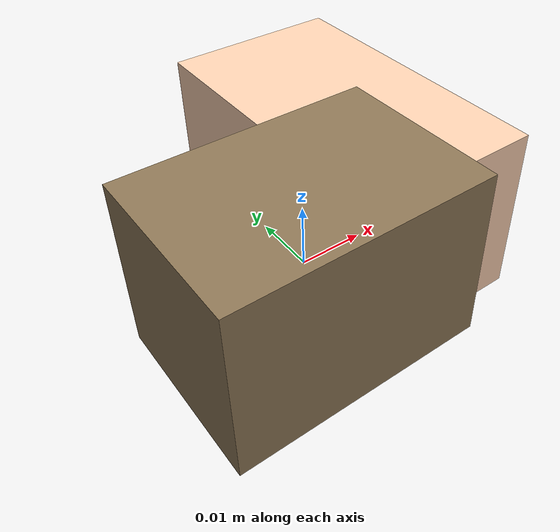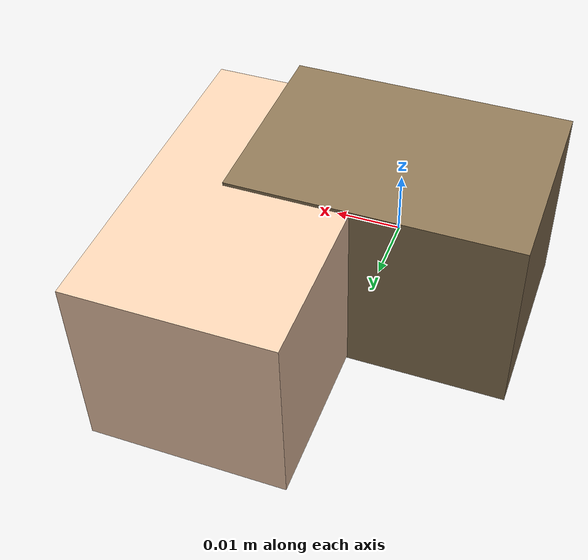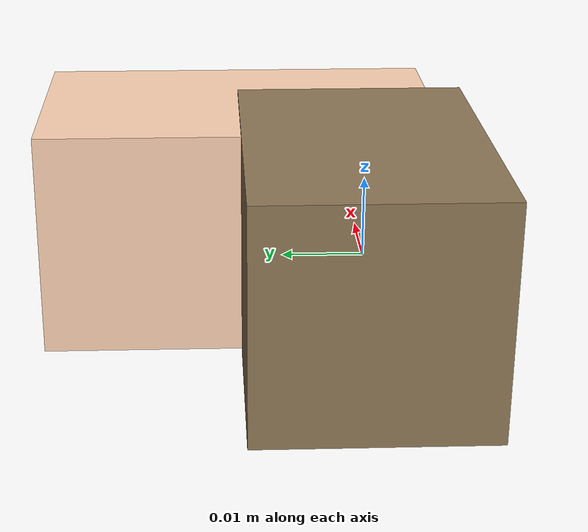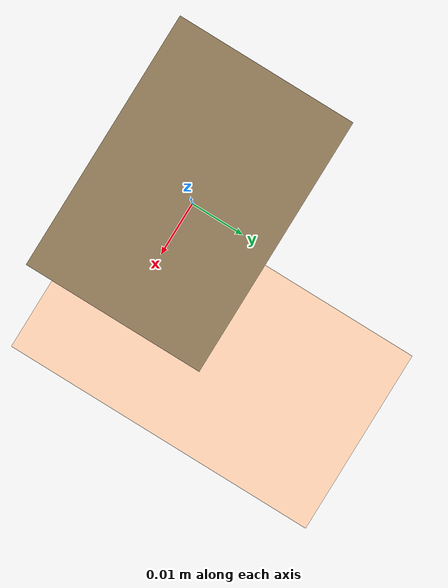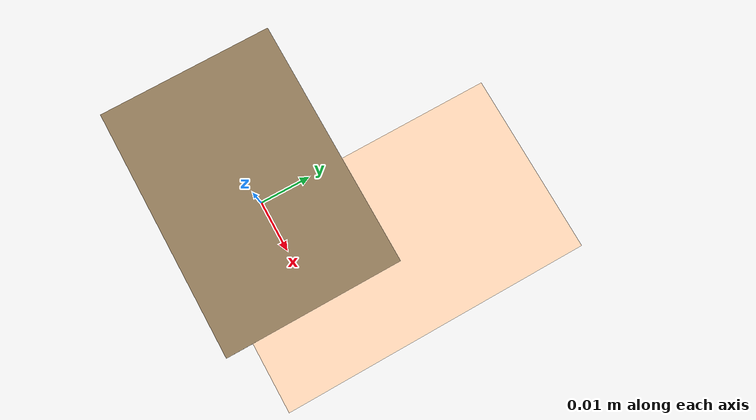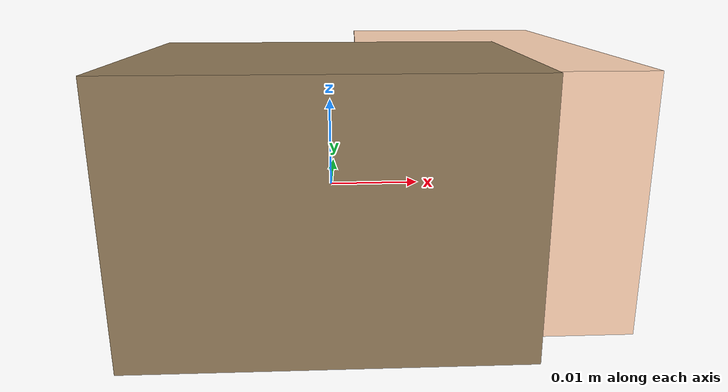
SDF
<sdf version="1.4"><world name="default"><model name="object0"><link name="link1"><pose>0 0 0 0 0 0</pose><inertial><pose>0 0 0 0 0 0</pose><mass>0.02328486667126569</mass><inertia><ixx>3.4927300006898533e-06</ixx><ixy>0</ixy><iyy>5.354248461238111e-06</iyy><ixz>0</ixz><iyz>0</iyz><izz>5.354248461238111e-06</izz></inertia></inertial><visual name="link1_visual"><pose>0 0  0 0 0 0</pose><geometry><box><size>0.04312012346530684 0.03 0.03</size></box></geometry><material><diffuse>0.5544739969311119 0.46674200876942323 0.33603417769605975 1</diffuse></material></visual><collision><pose>0 0  0 0 0 0</pose><geometry><box><size>0.04312012346530684 0.03 0.03</size></box></geometry></collision></link><link name="link2"><pose>0.018065426230015832 0.015011540294029966 0 0 0 0</pose><inertial><pose>0 0 0 0 0 0</pose><mass>0.027677062197623618</mass><inertia><ixx>7.998564764949617e-06</ixx><ixy>0</ixy><iyy>4.015480440505226e-06</iyy><ixz>0</ixz><iyz>0</iyz><izz>8.134643654087935e-06</izz></inertia></inertial><visual name="link2_visual"><pose>0 0  0 0 0 0</pose><geometry><box><size>0.03 0.051253818884488184 0.028999999999999998</size></box></geometry><material><diffuse>0.9866151627095645 0.818229634857061 0.6950674323934309 1</diffuse></material></visual><collision><pose>0 0  0 0 0 0</pose><geometry><box><size>0.03 0.051253818884488184 0.028999999999999998</size></box></geometry></collision></link><joint name="link_joint_0" type="fixed"><parent>link1</parent><child>link2</child><pose>0 0 0 0 0 0</pose><axis><xyz>0 0 1</xyz></axis></joint></model></world></sdf>
